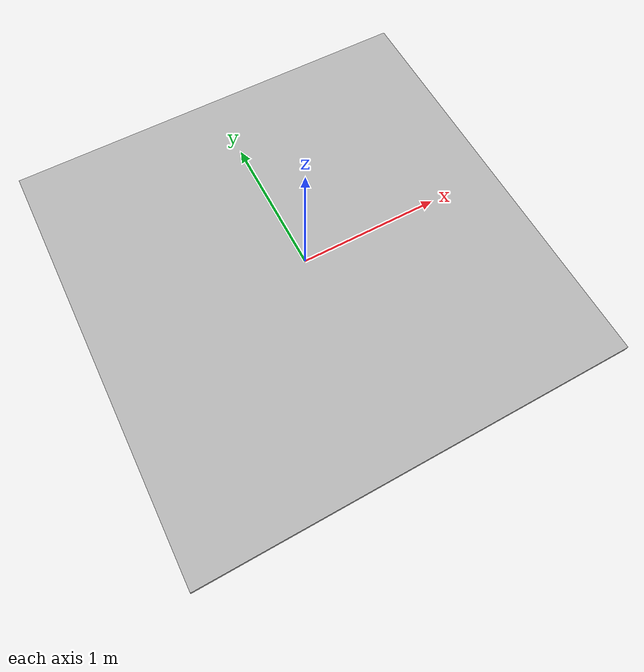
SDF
<?xml version='1.0'?>
<sdf version="1.7">
  <model name="table">
    <pose>0 0 0 0 0 0</pose>
    <link name="table_link">

      <inertial>
        <mass>1.0</mass>
        <inertia> <!-- inertias are tricky to compute -->
          <!-- http://gazebosim.org/tutorials?tut=inertia&cat=build_robot -->
          <ixx>0.083</ixx>       <!-- for a box: ixx = 0.083 * mass * (y*y + z*z) -->
          <ixy>0.0</ixy>         <!-- for a box: ixy = 0 -->
          <ixz>0.0</ixz>         <!-- for a box: ixz = 0 -->
          <iyy>0.083</iyy>       <!-- for a box: iyy = 0.083 * mass * (x*x + z*z) -->
          <iyz>0.0</iyz>         <!-- for a box: iyz = 0 -->
          <izz>0.083</izz>       <!-- for a box: izz = 0.083 * mass * (x*x + y*y) -->
        </inertia>
      </inertial>

      <collision name="collision">
        <geometry>
          <box>
            <size>3 3 0.05</size>
          </box>
        </geometry>
      </collision>

      <visual name="visual">
        <geometry>
          <box>
            <size>3 3 0.05</size>
          </box>
        </geometry>
        <material>
          <emissive> 0 0 0 1</emissive>
        </material>
      </visual>
    </link>
  </model>
</sdf>
